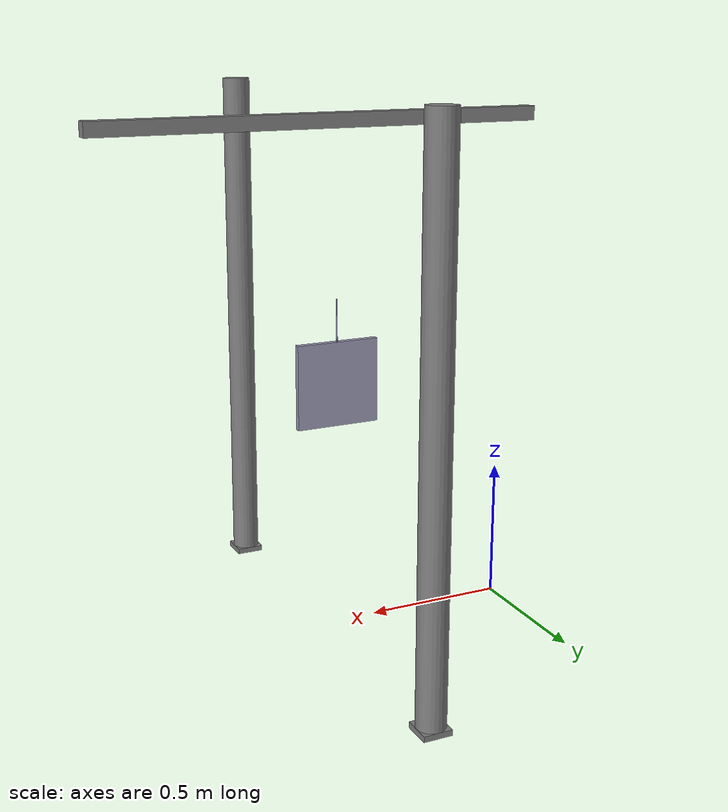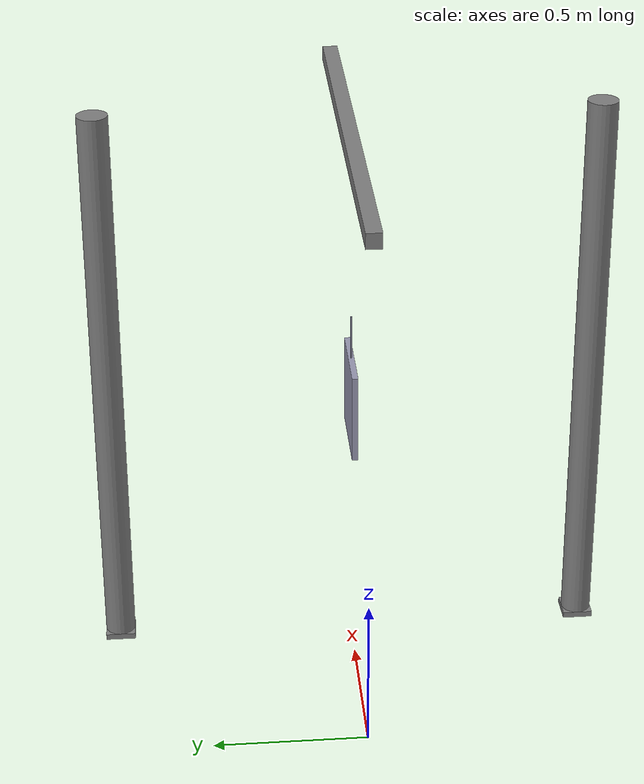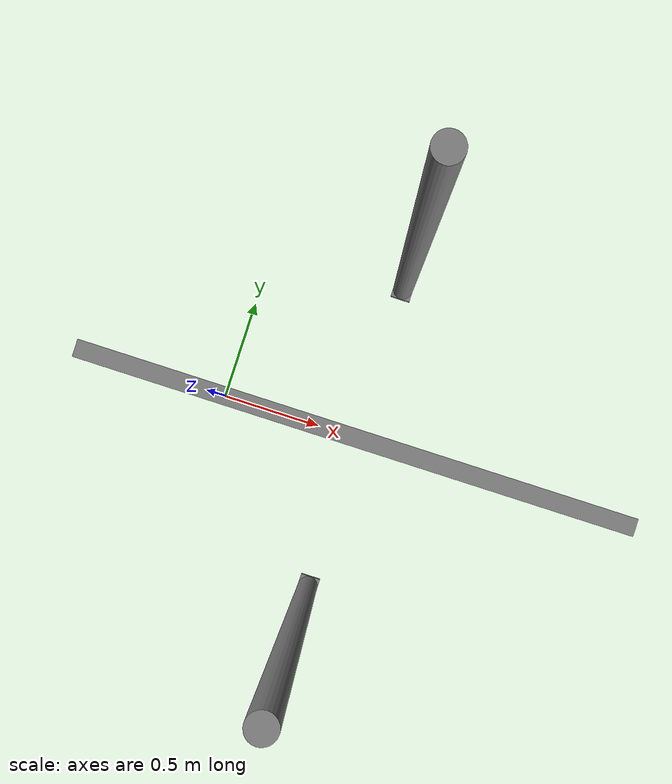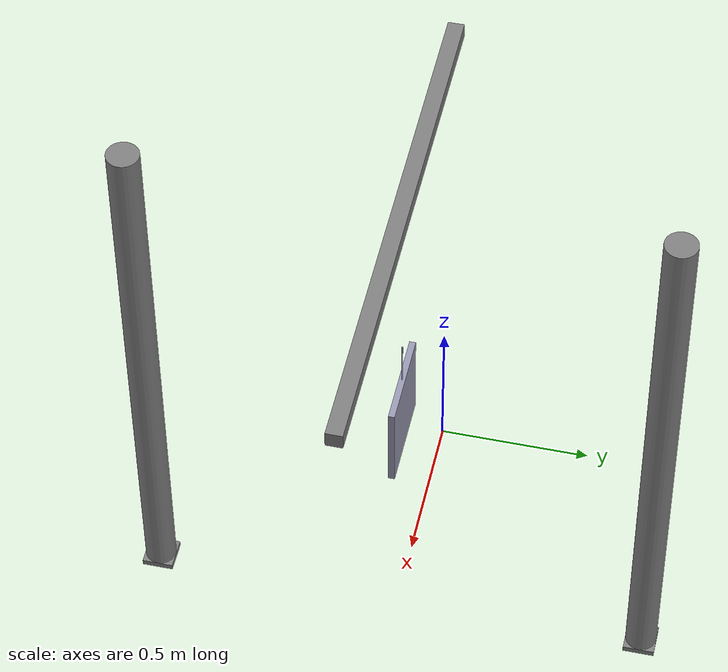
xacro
<?xml version="1.0"?>
<!--
  Full Scene Xacro: CR5 + Gantry + Object + Multi-Camera Rig
  由 full_scene.launch 调用。不硬编码相机数量。
-->
<robot name="cr5_spray_scene" xmlns:xacro="http://ros.org/wiki/xacro">

  <xacro:include filename="$(find cr5_spray_sim)/urdf/gantry.xacro"/>
  <xacro:include filename="$(find cr5_spray_sim)/urdf/hanging_object.xacro"/>
  <xacro:include filename="$(find realsense_gazebo_description)/urdf/_d455_like.urdf.xacro"/>

  <!-- World link -->
  <link name="world"/>

  <!-- Gantry -->
  <xacro:arg name="gantry_width" default="1.6"/>
  <xacro:arg name="gantry_height" default="1.9"/>
  <xacro:arg name="gantry_x" default="0.70"/>
  <xacro:gantry parent_link="world"
    width="$(arg gantry_width)" height="$(arg gantry_height)"
    x="$(arg gantry_x)"/>

  <!-- Hanging Object -->
  <xacro:arg name="object_type" default="flat_panel"/>
  <xacro:arg name="object_x" default="0.65"/>
  <xacro:arg name="object_y" default="0.0"/>
  <xacro:arg name="object_z" default="0.9"/>
  <xacro:arg name="object_yaw_deg" default="0"/>
  <xacro:hanging_object parent_link="world"
    object_type="$(arg object_type)"
    x="$(arg object_x)" y="$(arg object_y)" z="$(arg object_z)"
    yaw_deg="$(arg object_yaw_deg)"/>

  <!-- Fixed cameras (from camera layout parameter) -->
  <!-- Each camera is defined by a structured arg that encodes name,x,y,z,r,p,y -->
  <xacro:property name="camera_list" value="$(arg camera_list)"/>

  <!-- Default no-camera case (camera_list set by launch) -->
</robot>

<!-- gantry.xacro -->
<!--
  Gantry Frame Xacro
  门式框架：横梁、立柱、底脚。使用 primitive box/cylinder，带碰撞体。
-->
<robot xmlns:xacro="http://ros.org/wiki/xacro">

  <xacro:macro name="gantry" params="
      parent_link:=world
      name:=gantry
      width:=1.6
      height:=1.9
      crossbeam_height:=1.8
      beam_thickness:=0.05
      x:=0.70 y:=0.0 z:=0.0
  ">
    <material name="${name}_gray">
      <color rgba="0.5 0.5 0.5 1"/>
    </material>

    <joint name="${name}_base_joint" type="fixed">
      <parent link="${parent_link}"/>
      <child link="${name}_frame"/>
      <origin xyz="${x} ${y} ${z}" rpy="0 0 0"/>
    </joint>

    <link name="${name}_frame">
      <inertial>
        <mass value="50.0"/>
        <inertia ixx="10.0" ixy="0" ixz="0" iyy="10.0" iyz="0" izz="10.0"/>
        <origin xyz="0 0 ${height/2}" rpy="0 0 0"/>
      </inertial>
    </link>

    <!-- Left pillar -->
    <link name="${name}_left_pillar">
      <visual>
        <origin xyz="0 0 ${height/2}" rpy="0 0 0"/>
        <geometry><cylinder radius="${beam_thickness}" length="${height}"/></geometry>
        <material name="${name}_gray"/>
      </visual>
      <collision>
        <origin xyz="0 0 ${height/2}" rpy="0 0 0"/>
        <geometry><cylinder radius="${beam_thickness}" length="${height}"/></geometry>
      </collision>
      <inertial>
        <mass value="10.0"/>
        <inertia ixx="0.1" ixy="0" ixz="0" iyy="0.1" iyz="0" izz="0.01"/>
        <origin xyz="0 0 ${height/2}" rpy="0 0 0"/>
      </inertial>
    </link>
    <joint name="${name}_left_pillar_joint" type="fixed">
      <parent link="${name}_frame"/>
      <child link="${name}_left_pillar"/>
      <origin xyz="0 ${-width/2} 0" rpy="0 0 0"/>
    </joint>

    <!-- Right pillar -->
    <link name="${name}_right_pillar">
      <visual>
        <origin xyz="0 0 ${height/2}" rpy="0 0 0"/>
        <geometry><cylinder radius="${beam_thickness}" length="${height}"/></geometry>
        <material name="${name}_gray"/>
      </visual>
      <collision>
        <origin xyz="0 0 ${height/2}" rpy="0 0 0"/>
        <geometry><cylinder radius="${beam_thickness}" length="${height}"/></geometry>
      </collision>
      <inertial>
        <mass value="10.0"/>
        <inertia ixx="0.1" ixy="0" ixz="0" iyy="0.1" iyz="0" izz="0.01"/>
        <origin xyz="0 0 ${height/2}" rpy="0 0 0"/>
      </inertial>
    </link>
    <joint name="${name}_right_pillar_joint" type="fixed">
      <parent link="${name}_frame"/>
      <child link="${name}_right_pillar"/>
      <origin xyz="0 ${width/2} 0" rpy="0 0 0"/>
    </joint>

    <!-- Cross beam -->
    <link name="${name}_crossbeam">
      <visual>
        <origin xyz="0 0 0" rpy="0 0 0"/>
        <geometry><box size="${width} ${beam_thickness} ${beam_thickness}"/></geometry>
        <material name="${name}_gray"/>
      </visual>
      <collision>
        <origin xyz="0 0 0" rpy="0 0 0"/>
        <geometry><box size="${width} ${beam_thickness} ${beam_thickness}"/></geometry>
      </collision>
      <inertial>
        <mass value="5.0"/>
        <inertia ixx="0.1" ixy="0" ixz="0" iyy="0.1" iyz="0" izz="0.01"/>
        <origin xyz="0 0 0" rpy="0 0 0"/>
      </inertial>
    </link>
    <joint name="${name}_crossbeam_joint" type="fixed">
      <parent link="${name}_frame"/>
      <child link="${name}_crossbeam"/>
      <origin xyz="0 0 ${crossbeam_height}" rpy="0 0 0"/>
    </joint>

    <!-- Base feet -->
    <link name="${name}_base_left">
      <visual>
        <geometry><box size="0.1 0.1 0.02"/></geometry>
        <material name="${name}_gray"/>
      </visual>
      <collision>
        <geometry><box size="0.1 0.1 0.02"/></geometry>
      </collision>
      <inertial>
        <mass value="1.0"/>
        <inertia ixx="0.001" ixy="0" ixz="0" iyy="0.001" iyz="0" izz="0.001"/>
      </inertial>
    </link>
    <joint name="${name}_base_left_joint" type="fixed">
      <parent link="${name}_frame"/>
      <child link="${name}_base_left"/>
      <origin xyz="0 ${-width/2} 0" rpy="0 0 0"/>
    </joint>

    <link name="${name}_base_right">
      <visual>
        <geometry><box size="0.1 0.1 0.02"/></geometry>
        <material name="${name}_gray"/>
      </visual>
      <collision>
        <geometry><box size="0.1 0.1 0.02"/></geometry>
      </collision>
      <inertial>
        <mass value="1.0"/>
        <inertia ixx="0.001" ixy="0" ixz="0" iyy="0.001" iyz="0" izz="0.001"/>
      </inertial>
    </link>
    <joint name="${name}_base_right_joint" type="fixed">
      <parent link="${name}_frame"/>
      <child link="${name}_base_right"/>
      <origin xyz="0 ${width/2} 0" rpy="0 0 0"/>
    </joint>

    <gazebo reference="${name}_frame">
      <self_collide>0</self_collide>
      <static>true</static>
    </gazebo>
  </xacro:macro>

</robot>

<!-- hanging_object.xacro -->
<!--
  Hanging Object Xacro
  吊挂工件：固定吊点 + 可控 yaw_joint + object_frame
  支持 flat_panel, cylinder_part, asymmetric_part 三种工件。
-->
<robot xmlns:xacro="http://ros.org/wiki/xacro">

  <xacro:macro name="hanging_object" params="
      parent_link:=world
      object_type:=flat_panel
      object_name:=spray_object
      x:=0.65 y:=0.0 z:=0.9
      yaw_deg:=0
      wire_length:=0.3
      wire_diameter:=0.005
  ">
    <xacro:property name="yaw_rad" value="${yaw_deg * 3.1415926535897931 / 180.0}"/>

    <material name="${object_name}_color">
      <color rgba="0.6 0.6 0.7 1"/>
    </material>

    <!-- Hanging point at gantry crossbeam -->
    <link name="${object_name}_hanging_point"/>
    <joint name="${object_name}_hanging_joint" type="fixed">
      <parent link="${parent_link}"/>
      <child link="${object_name}_hanging_point"/>
      <origin xyz="${x} ${y} ${z + wire_length}" rpy="0 0 0"/>
    </joint>

    <!-- Wire (visual only) -->
    <link name="${object_name}_wire">
      <visual>
        <origin xyz="0 0 ${-wire_length/2}" rpy="0 0 0"/>
        <geometry><cylinder radius="${wire_diameter/2}" length="${wire_length}"/></geometry>
        <material name="${object_name}_color"/>
      </visual>
      <inertial>
        <mass value="0.01"/>
        <inertia ixx="0.00001" ixy="0" ixz="0" iyy="0.00001" iyz="0" izz="0.00001"/>
      </inertial>
    </link>
    <joint name="${object_name}_wire_joint" type="fixed">
      <parent link="${object_name}_hanging_point"/>
      <child link="${object_name}_wire"/>
      <origin xyz="0 0 0" rpy="0 0 0"/>
    </joint>

    <!-- Yaw joint -->
    <joint name="${object_name}_yaw_joint" type="revolute">
      <parent link="${object_name}_wire"/>
      <child link="${object_name}_yaw_link"/>
      <origin xyz="0 0 ${-wire_length}" rpy="0 0 0"/>
      <axis xyz="0 0 1"/>
      <limit lower="-3.14" upper="3.14" effort="1.0" velocity="0.5"/>
      <dynamics damping="0.5" friction="0.1"/>
    </joint>
    <link name="${object_name}_yaw_link">
      <inertial>
        <mass value="0.1"/>
        <inertia ixx="0.001" ixy="0" ixz="0" iyy="0.001" iyz="0" izz="0.001"/>
      </inertial>
    </link>

    <!-- Object frame -->
    <link name="${object_name}_frame"/>
    <joint name="${object_name}_frame_joint" type="fixed">
      <parent link="${object_name}_yaw_link"/>
      <child link="${object_name}_frame"/>
      <origin xyz="0 0 0" rpy="0 0 ${yaw_rad}"/>
    </joint>

    <!-- Object body based on type -->
    <xacro:if value="${object_type == 'flat_panel'}">
      <link name="${object_name}_body">
        <visual>
          <origin xyz="0 0 0" rpy="0 0 0"/>
          <geometry><box size="0.30 0.02 0.30"/></geometry>
          <material name="${object_name}_color"/>
        </visual>
        <collision>
          <origin xyz="0 0 0" rpy="0 0 0"/>
          <geometry><box size="0.30 0.02 0.30"/></geometry>
        </collision>
        <inertial>
          <mass value="0.5"/>
          <inertia ixx="0.005" ixy="0" ixz="0" iyy="0.005" iyz="0" izz="0.005"/>
        </inertial>
      </link>
    </xacro:if>

    <xacro:if value="${object_type == 'cylinder_part'}">
      <link name="${object_name}_body">
        <visual>
          <origin xyz="0 0 0.175" rpy="0 0 0"/>
          <geometry><cylinder radius="0.10" length="0.35"/></geometry>
          <material name="${object_name}_color"/>
        </visual>
        <collision>
          <origin xyz="0 0 0.175" rpy="0 0 0"/>
          <geometry><cylinder radius="0.10" length="0.35"/></geometry>
        </collision>
        <inertial>
          <mass value="1.0"/>
          <inertia ixx="0.01" ixy="0" ixz="0" iyy="0.01" iyz="0" izz="0.005"/>
          <origin xyz="0 0 0.175" rpy="0 0 0"/>
        </inertial>
      </link>
    </xacro:if>

    <xacro:if value="${object_type == 'asymmetric_part'}">
      <link name="${object_name}_body">
        <visual>
          <origin xyz="0 0 0.1" rpy="0 0 0"/>
          <!-- Placeholder mesh; replace with actual model -->
          <geometry><box size="0.25 0.20 0.20"/></geometry>
          <material name="${object_name}_color"/>
        </visual>
        <collision>
          <origin xyz="0 0 0.1" rpy="0 0 0"/>
          <geometry><box size="0.25 0.20 0.20"/></geometry>
        </collision>
        <inertial>
          <mass value="0.8"/>
          <inertia ixx="0.005" ixy="0" ixz="0" iyy="0.005" iyz="0" izz="0.005"/>
          <origin xyz="0 0 0.1" rpy="0 0 0"/>
        </inertial>
      </link>
    </xacro:if>

    <joint name="${object_name}_body_joint" type="fixed">
      <parent link="${object_name}_frame"/>
      <child link="${object_name}_body"/>
    </joint>

    <gazebo>
      <plugin name="${object_name}_yaw_controller" filename="libgazebo_ros_control.so">
        <robotNamespace>/${object_name}</robotNamespace>
      </plugin>
    </gazebo>

  </xacro:macro>

</robot>
